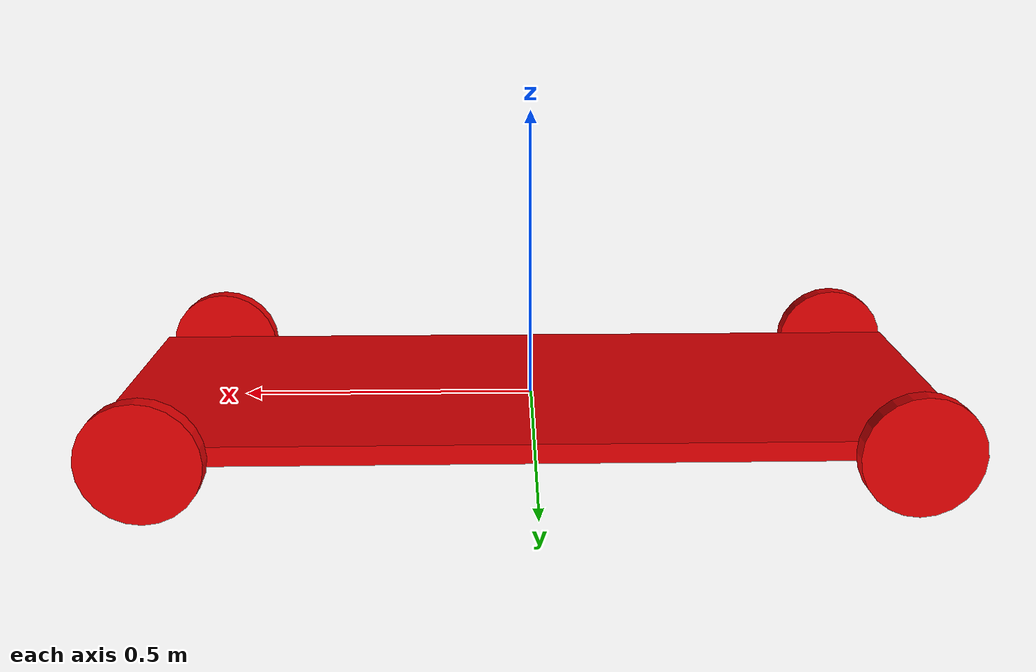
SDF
<?xml version='1.0'?>
<sdf version='1.6'>
  <model name='cart'>
    <link name='link_0'>
      <pose frame=''>0.002043 -1e-06 0 0 -0 0</pose>
      <inertial>
        <mass>0.0253075</mass>
        <inertia>
          <ixx>0.00062948</ixx>
          <ixy>0</ixy>
          <ixz>0</ixz>
          <iyy>0.00421325</iyy>
          <iyz>0</iyz>
          <izz>0.00483818</izz>
        </inertia>
        <pose frame=''>0 0 0 0 -0 0</pose>
      </inertial>
      <gravity>1</gravity>
      <self_collide>0</self_collide>
      <kinematic>0</kinematic>
      <visual name='visual'>
        <pose frame=''>0 0 0 0 -0 0</pose>
        <geometry>
          <box>
            <size>1.41306 0.545344 0.032853</size>
          </box>
        </geometry>
        <material>
          <lighting>1</lighting>
          <script>
            <uri>file://media/materials/scripts/gazebo.material</uri>
            <name>Gazebo/Grey</name>
          </script>
          <ambient>0.9 0.002 0 1</ambient>
          <diffuse>0.9 0.002 0.01 0.9</diffuse>
          <specular>0.01 0.01 0.01 1</specular>
          <emissive>0 0 0 1</emissive>
          <shader type='vertex'>
            <normal_map>__default__</normal_map>
          </shader>
        </material>
        <cast_shadows>1</cast_shadows>
        <transparency>0</transparency>
      </visual>
      <collision name='collision'>
        <laser_retro>0</laser_retro>
        <max_contacts>10</max_contacts>
        <pose frame=''>0 0 0 0 -0 0</pose>
        <geometry>
          <box>
            <size>1.41306 0.545344 0.032853</size>
          </box>
        </geometry>
        <surface>
          <friction>
            <ode>
              <mu>1</mu>
              <mu2>1</mu2>
              <fdir1>0 0 0</fdir1>
              <slip1>0</slip1>
              <slip2>0</slip2>
            </ode>
            <torsional>
              <coefficient>1</coefficient>
              <patch_radius>0</patch_radius>
              <surface_radius>0</surface_radius>
              <use_patch_radius>1</use_patch_radius>
              <ode>
                <slip>0</slip>
              </ode>
            </torsional>
          </friction>
          <bounce>
            <restitution_coefficient>0</restitution_coefficient>
            <threshold>1e+06</threshold>
          </bounce>
          <contact>
            <collide_without_contact>0</collide_without_contact>
            <collide_without_contact_bitmask>1</collide_without_contact_bitmask>
            <collide_bitmask>1</collide_bitmask>
            <ode>
              <soft_cfm>0</soft_cfm>
              <soft_erp>0.2</soft_erp>
              <kp>1e+13</kp>
              <kd>1</kd>
              <max_vel>0.01</max_vel>
              <min_depth>0</min_depth>
            </ode>
            <bullet>
              <split_impulse>1</split_impulse>
              <split_impulse_penetration_threshold>-0.01</split_impulse_penetration_threshold>
              <soft_cfm>0</soft_cfm>
              <soft_erp>0.2</soft_erp>
              <kp>1e+13</kp>
              <kd>1</kd>
            </bullet>
          </contact>
        </surface>
      </collision>
    </link>
    <link name='link_1'>
      <pose frame=''>0.598738 -0.289052 0 -1.55276 0 0</pose>
      <inertial>
        <mass>0.00115815</mass>
        <inertia>
          <ixx>2.95396e-06</ixx>
          <ixy>0</ixy>
          <ixz>0</ixz>
          <iyy>2.95396e-06</iyy>
          <iyz>0</iyz>
          <izz>5.7496e-06</izz>
        </inertia>
        <pose frame=''>0 0 0 0 -0 0</pose>
      </inertial>
      <gravity>1</gravity>
      <self_collide>0</self_collide>
      <kinematic>0</kinematic>
      <visual name='visual'>
        <pose frame=''>0 0 0 0 -0 0</pose>
        <geometry>
          <cylinder>
            <radius>0.0996172</radius>
            <length>0.0291706</length>
          </cylinder>
        </geometry>
        <material>
          <lighting>1</lighting>
          <script>
            <uri>file://media/materials/scripts/gazebo.material</uri>
            <name>Gazebo/Grey</name>
          </script>
          <ambient>0.9 0.002 0 1</ambient>
          <diffuse>0.9 0.002 0.01 0.9</diffuse>
          <specular>0.01 0.01 0.01 1</specular>
          <emissive>0 0 0 1</emissive>
          <shader type='vertex'>
            <normal_map>__default__</normal_map>
          </shader>
        </material>
        <cast_shadows>1</cast_shadows>
        <transparency>0</transparency>
      </visual>
      <collision name='collision'>
        <laser_retro>0</laser_retro>
        <max_contacts>10</max_contacts>
        <pose frame=''>0 0 0 0 -0 0</pose>
        <geometry>
          <cylinder>
            <radius>0.099617</radius>
            <length>0.029171</length>
          </cylinder>
        </geometry>
        <surface>
          <friction>
            <ode>
              <mu>1</mu>
              <mu2>1</mu2>
              <fdir1>0 0 0</fdir1>
              <slip1>0</slip1>
              <slip2>0</slip2>
            </ode>
            <torsional>
              <coefficient>1</coefficient>
              <patch_radius>0</patch_radius>
              <surface_radius>0</surface_radius>
              <use_patch_radius>1</use_patch_radius>
              <ode>
                <slip>0</slip>
              </ode>
            </torsional>
          </friction>
          <bounce>
            <restitution_coefficient>0</restitution_coefficient>
            <threshold>1e+06</threshold>
          </bounce>
          <contact>
            <collide_without_contact>0</collide_without_contact>
            <collide_without_contact_bitmask>1</collide_without_contact_bitmask>
            <collide_bitmask>1</collide_bitmask>
            <ode>
              <soft_cfm>0</soft_cfm>
              <soft_erp>0.2</soft_erp>
              <kp>1e+13</kp>
              <kd>1</kd>
              <max_vel>0.01</max_vel>
              <min_depth>0</min_depth>
            </ode>
            <bullet>
              <split_impulse>1</split_impulse>
              <split_impulse_penetration_threshold>-0.01</split_impulse_penetration_threshold>
              <soft_cfm>0</soft_cfm>
              <soft_erp>0.2</soft_erp>
              <kp>1e+13</kp>
              <kd>1</kd>
            </bullet>
          </contact>
        </surface>
      </collision>
    </link>
    <link name='link_1_clone'>
      <pose frame=''>-0.604867 0.289051 0 -1.55276 0 0</pose>
      <inertial>
        <mass>0.00115815</mass>
        <inertia>
          <ixx>2.95396e-06</ixx>
          <ixy>0</ixy>
          <ixz>0</ixz>
          <iyy>2.95396e-06</iyy>
          <iyz>0</iyz>
          <izz>5.7496e-06</izz>
        </inertia>
        <pose frame=''>0 0 0 0 -0 0</pose>
      </inertial>
      <self_collide>0</self_collide>
      <kinematic>0</kinematic>
      <visual name='visual'>
        <pose frame=''>0 0 0 0 -0 0</pose>
        <geometry>
          <cylinder>
            <radius>0.0996172</radius>
            <length>0.0291706</length>
          </cylinder>
        </geometry>
        <material>
          <lighting>1</lighting>
          <script>
            <uri>file://media/materials/scripts/gazebo.material</uri>
            <name>Gazebo/Grey</name>
          </script>
          <ambient>0.9 0.002 0 1</ambient>
          <diffuse>0.9 0.002 0.01 0.9</diffuse>
          <specular>0.01 0.01 0.01 1</specular>
          <emissive>0 0 0 1</emissive>
          <shader type='vertex'>
            <normal_map>__default__</normal_map>
          </shader>
        </material>
        <cast_shadows>1</cast_shadows>
        <transparency>0</transparency>
      </visual>
      <collision name='collision'>
        <laser_retro>0</laser_retro>
        <max_contacts>10</max_contacts>
        <pose frame=''>0 0 0 0 -0 0</pose>
        <geometry>
          <cylinder>
            <radius>0.099617</radius>
            <length>0.029171</length>
          </cylinder>
        </geometry>
        <surface>
          <friction>
            <ode>
              <mu>1</mu>
              <mu2>1</mu2>
              <fdir1>0 0 0</fdir1>
              <slip1>0</slip1>
              <slip2>0</slip2>
            </ode>
            <torsional>
              <coefficient>1</coefficient>
              <patch_radius>0</patch_radius>
              <surface_radius>0</surface_radius>
              <use_patch_radius>1</use_patch_radius>
              <ode>
                <slip>0</slip>
              </ode>
            </torsional>
          </friction>
          <bounce>
            <restitution_coefficient>0</restitution_coefficient>
            <threshold>1e+06</threshold>
          </bounce>
          <contact>
            <collide_without_contact>0</collide_without_contact>
            <collide_without_contact_bitmask>1</collide_without_contact_bitmask>
            <collide_bitmask>1</collide_bitmask>
            <ode>
              <soft_cfm>0</soft_cfm>
              <soft_erp>0.2</soft_erp>
              <kp>1e+13</kp>
              <kd>1</kd>
              <max_vel>0.01</max_vel>
              <min_depth>0</min_depth>
            </ode>
            <bullet>
              <split_impulse>1</split_impulse>
              <split_impulse_penetration_threshold>-0.01</split_impulse_penetration_threshold>
              <soft_cfm>0</soft_cfm>
              <soft_erp>0.2</soft_erp>
              <kp>1e+13</kp>
              <kd>1</kd>
            </bullet>
          </contact>
        </surface>
      </collision>
    </link>
    <link name='link_1_clone_0'>
      <pose frame=''>-0.604867 -0.289052 0 -1.55276 0 0</pose>
      <inertial>
        <mass>0.00115815</mass>
        <inertia>
          <ixx>2.95396e-06</ixx>
          <ixy>0</ixy>
          <ixz>0</ixz>
          <iyy>2.95396e-06</iyy>
          <iyz>0</iyz>
          <izz>5.7496e-06</izz>
        </inertia>
        <pose frame=''>0 0 0 0 -0 0</pose>
      </inertial>
      <self_collide>0</self_collide>
      <kinematic>0</kinematic>
      <visual name='visual'>
        <pose frame=''>0 0 0 0 -0 0</pose>
        <geometry>
          <cylinder>
            <radius>0.0996172</radius>
            <length>0.0291706</length>
          </cylinder>
        </geometry>
        <material>
          <lighting>1</lighting>
          <script>
            <uri>file://media/materials/scripts/gazebo.material</uri>
            <name>Gazebo/Grey</name>
          </script>
          <ambient>0.9 0.002 0 1</ambient>
          <diffuse>0.9 0.002 0.01 0.9</diffuse>
          <specular>0.01 0.01 0.01 1</specular>
          <emissive>0 0 0 1</emissive>
          <shader type='vertex'>
            <normal_map>__default__</normal_map>
          </shader>
        </material>
        <cast_shadows>1</cast_shadows>
        <transparency>0</transparency>
      </visual>
      <collision name='collision'>
        <laser_retro>0</laser_retro>
        <max_contacts>10</max_contacts>
        <pose frame=''>0 0 0 0 -0 0</pose>
        <geometry>
          <cylinder>
            <radius>0.099617</radius>
            <length>0.029171</length>
          </cylinder>
        </geometry>
        <surface>
          <friction>
            <ode>
              <mu>1</mu>
              <mu2>1</mu2>
              <fdir1>0 0 0</fdir1>
              <slip1>0</slip1>
              <slip2>0</slip2>
            </ode>
            <torsional>
              <coefficient>1</coefficient>
              <patch_radius>0</patch_radius>
              <surface_radius>0</surface_radius>
              <use_patch_radius>1</use_patch_radius>
              <ode>
                <slip>0</slip>
              </ode>
            </torsional>
          </friction>
          <bounce>
            <restitution_coefficient>0</restitution_coefficient>
            <threshold>1e+06</threshold>
          </bounce>
          <contact>
            <collide_without_contact>0</collide_without_contact>
            <collide_without_contact_bitmask>1</collide_without_contact_bitmask>
            <collide_bitmask>1</collide_bitmask>
            <ode>
              <soft_cfm>0</soft_cfm>
              <soft_erp>0.2</soft_erp>
              <kp>1e+13</kp>
              <kd>1</kd>
              <max_vel>0.01</max_vel>
              <min_depth>0</min_depth>
            </ode>
            <bullet>
              <split_impulse>1</split_impulse>
              <split_impulse_penetration_threshold>-0.01</split_impulse_penetration_threshold>
              <soft_cfm>0</soft_cfm>
              <soft_erp>0.2</soft_erp>
              <kp>1e+13</kp>
              <kd>1</kd>
            </bullet>
          </contact>
        </surface>
      </collision>
    </link>
    <link name='link_1_clone_1'>
      <pose frame=''>0.608953 0.289051 0 -1.55276 0 0</pose>
      <inertial>
        <mass>0.00115815</mass>
        <inertia>
          <ixx>2.95396e-06</ixx>
          <ixy>0</ixy>
          <ixz>0</ixz>
          <iyy>2.95396e-06</iyy>
          <iyz>0</iyz>
          <izz>5.7496e-06</izz>
        </inertia>
        <pose frame=''>0 0 0 0 -0 0</pose>
      </inertial>
      <self_collide>0</self_collide>
      <kinematic>0</kinematic>
      <visual name='visual'>
        <pose frame=''>0 0 0 0 -0 0</pose>
        <geometry>
          <cylinder>
            <radius>0.0996172</radius>
            <length>0.0291706</length>
          </cylinder>
        </geometry>
        <material>
          <lighting>1</lighting>
          <script>
            <uri>file://media/materials/scripts/gazebo.material</uri>
            <name>Gazebo/Grey</name>
          </script>
          <ambient>0.9 0.002 0 1</ambient>
          <diffuse>0.9 0.002 0.01 0.9</diffuse>
          <specular>0.01 0.01 0.01 1</specular>
          <emissive>0 0 0 1</emissive>
          <shader type='vertex'>
            <normal_map>__default__</normal_map>
          </shader>
        </material>
        <cast_shadows>1</cast_shadows>
        <transparency>0</transparency>
      </visual>
      <collision name='collision'>
        <laser_retro>0</laser_retro>
        <max_contacts>10</max_contacts>
        <pose frame=''>0 0 0 0 -0 0</pose>
        <geometry>
          <cylinder>
            <radius>0.099617</radius>
            <length>0.029171</length>
          </cylinder>
        </geometry>
        <surface>
          <friction>
            <ode>
              <mu>1</mu>
              <mu2>1</mu2>
              <fdir1>0 0 0</fdir1>
              <slip1>0</slip1>
              <slip2>0</slip2>
            </ode>
            <torsional>
              <coefficient>1</coefficient>
              <patch_radius>0</patch_radius>
              <surface_radius>0</surface_radius>
              <use_patch_radius>1</use_patch_radius>
              <ode>
                <slip>0</slip>
              </ode>
            </torsional>
          </friction>
          <bounce>
            <restitution_coefficient>0</restitution_coefficient>
            <threshold>1e+06</threshold>
          </bounce>
          <contact>
            <collide_without_contact>0</collide_without_contact>
            <collide_without_contact_bitmask>1</collide_without_contact_bitmask>
            <collide_bitmask>1</collide_bitmask>
            <ode>
              <soft_cfm>0</soft_cfm>
              <soft_erp>0.2</soft_erp>
              <kp>1e+13</kp>
              <kd>1</kd>
              <max_vel>0.01</max_vel>
              <min_depth>0</min_depth>
            </ode>
            <bullet>
              <split_impulse>1</split_impulse>
              <split_impulse_penetration_threshold>-0.01</split_impulse_penetration_threshold>
              <soft_cfm>0</soft_cfm>
              <soft_erp>0.2</soft_erp>
              <kp>1e+13</kp>
              <kd>1</kd>
            </bullet>
          </contact>
        </surface>
      </collision>
    </link>
    <joint name='link_0_JOINT_0' type='revolute'>
      <parent>link_0</parent>
      <child>link_1</child>
      <pose frame=''>0 0 0 0 -0 0</pose>
      <axis>
        <xyz>0 0 1</xyz>
        <use_parent_model_frame>0</use_parent_model_frame>
        <limit>
          <lower>-1.79769e+308</lower>
          <upper>1.79769e+308</upper>
          <effort>-1</effort>
          <velocity>-1</velocity>
        </limit>
        <dynamics>
          <spring_reference>0</spring_reference>
          <spring_stiffness>0</spring_stiffness>
          <damping>0</damping>
        </dynamics>
      </axis>
      <physics>
        <ode>
          <limit>
            <cfm>0</cfm>
            <erp>0.2</erp>
          </limit>
          <suspension>
            <cfm>0</cfm>
            <erp>0.2</erp>
          </suspension>
        </ode>
      </physics>
    </joint>
    <joint name='link_0_JOINT_1' type='revolute'>
      <parent>link_0</parent>
      <child>link_1_clone_1</child>
      <pose frame=''>0 0 0 0 -0 0</pose>
      <axis>
        <xyz>0 0 1</xyz>
        <use_parent_model_frame>0</use_parent_model_frame>
        <limit>
          <lower>-1.79769e+308</lower>
          <upper>1.79769e+308</upper>
          <effort>-1</effort>
          <velocity>-1</velocity>
        </limit>
        <dynamics>
          <spring_reference>0</spring_reference>
          <spring_stiffness>0</spring_stiffness>
          <damping>0</damping>
        </dynamics>
      </axis>
      <physics>
        <ode>
          <limit>
            <cfm>0</cfm>
            <erp>0.2</erp>
          </limit>
          <suspension>
            <cfm>0</cfm>
            <erp>0.2</erp>
          </suspension>
        </ode>
      </physics>
    </joint>
    <joint name='link_0_JOINT_2' type='revolute'>
      <parent>link_0</parent>
      <child>link_1_clone_0</child>
      <pose frame=''>0 0 0 0 -0 0</pose>
      <axis>
        <xyz>0 0 1</xyz>
        <use_parent_model_frame>0</use_parent_model_frame>
        <limit>
          <lower>-1.79769e+308</lower>
          <upper>1.79769e+308</upper>
          <effort>-1</effort>
          <velocity>-1</velocity>
        </limit>
        <dynamics>
          <spring_reference>0</spring_reference>
          <spring_stiffness>0</spring_stiffness>
          <damping>0</damping>
        </dynamics>
      </axis>
      <physics>
        <ode>
          <limit>
            <cfm>0</cfm>
            <erp>0.2</erp>
          </limit>
          <suspension>
            <cfm>0</cfm>
            <erp>0.2</erp>
          </suspension>
        </ode>
      </physics>
    </joint>
    <joint name='link_0_JOINT_3' type='revolute'>
      <parent>link_0</parent>
      <child>link_1_clone</child>
      <pose frame=''>0 0 0 0 -0 0</pose>
      <axis>
        <xyz>0 0 1</xyz>
        <use_parent_model_frame>0</use_parent_model_frame>
        <limit>
          <lower>-1.79769e+308</lower>
          <upper>1.79769e+308</upper>
          <effort>-1</effort>
          <velocity>-1</velocity>
        </limit>
        <dynamics>
          <spring_reference>0</spring_reference>
          <spring_stiffness>0</spring_stiffness>
          <damping>0</damping>
        </dynamics>
      </axis>
      <physics>
        <ode>
          <limit>
            <cfm>0</cfm>
            <erp>0.2</erp>
          </limit>
          <suspension>
            <cfm>0</cfm>
            <erp>0.2</erp>
          </suspension>
        </ode>
      </physics>
    </joint>
    <static>0</static>
    <allow_auto_disable>1</allow_auto_disable>
  </model>
</sdf>
